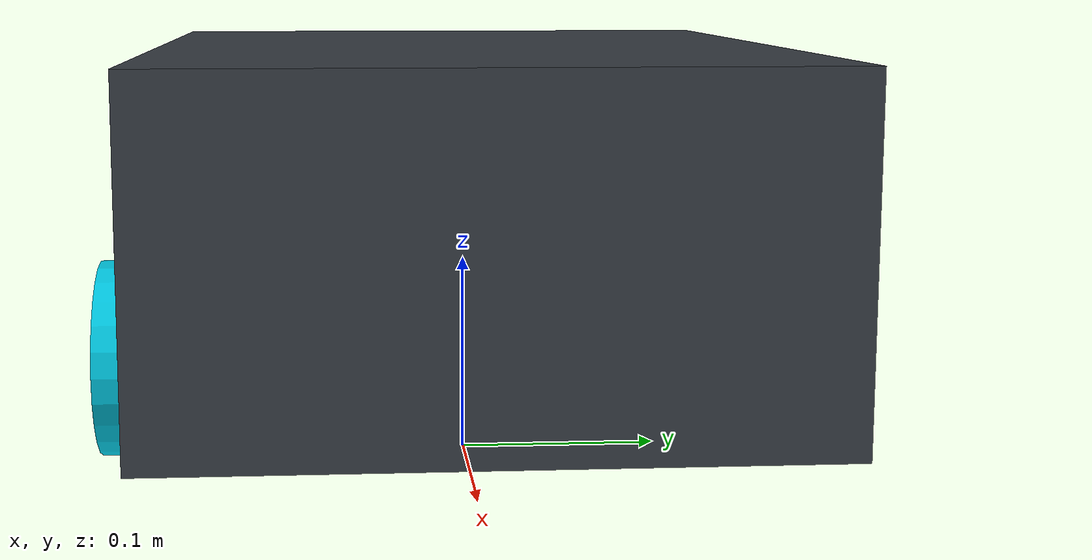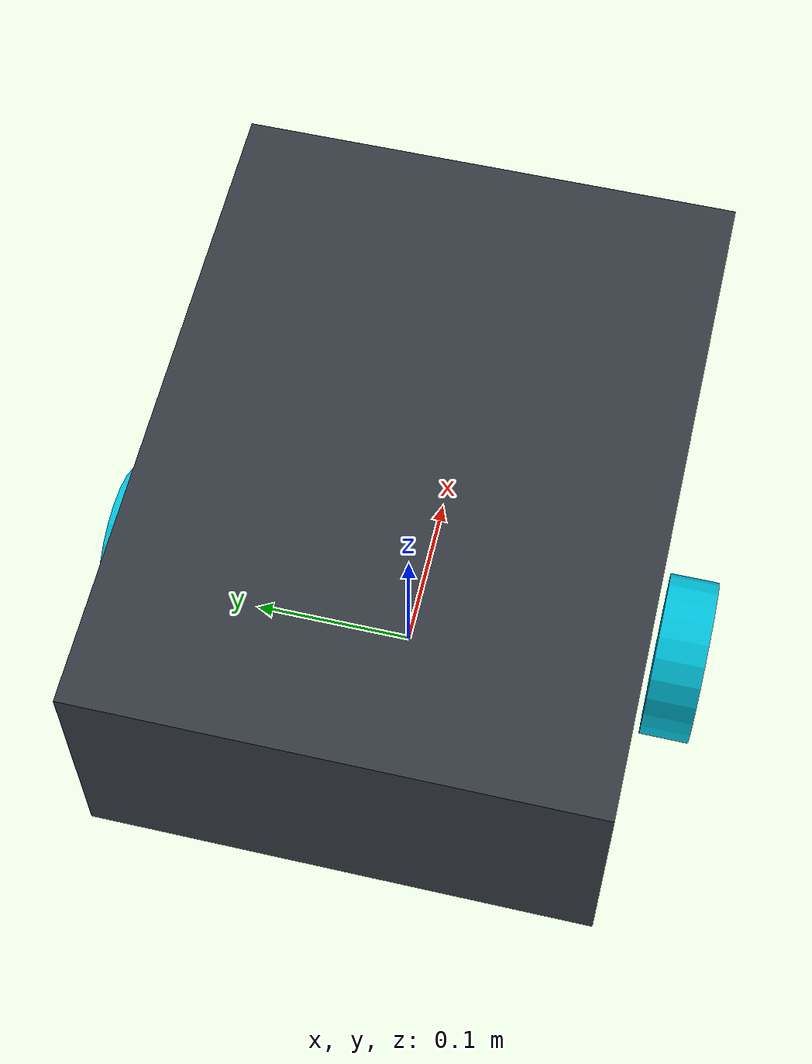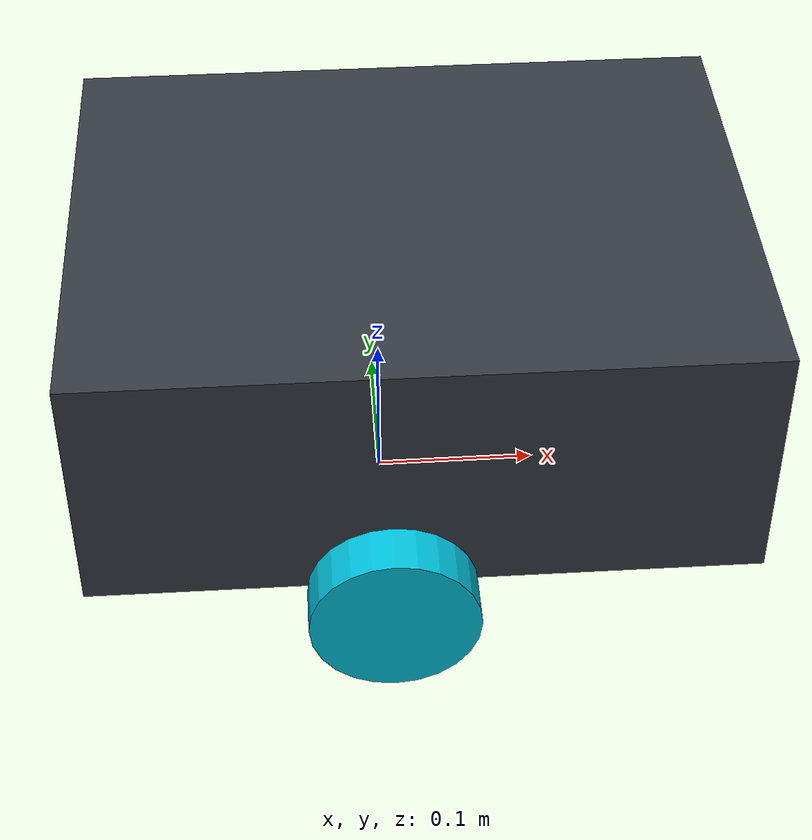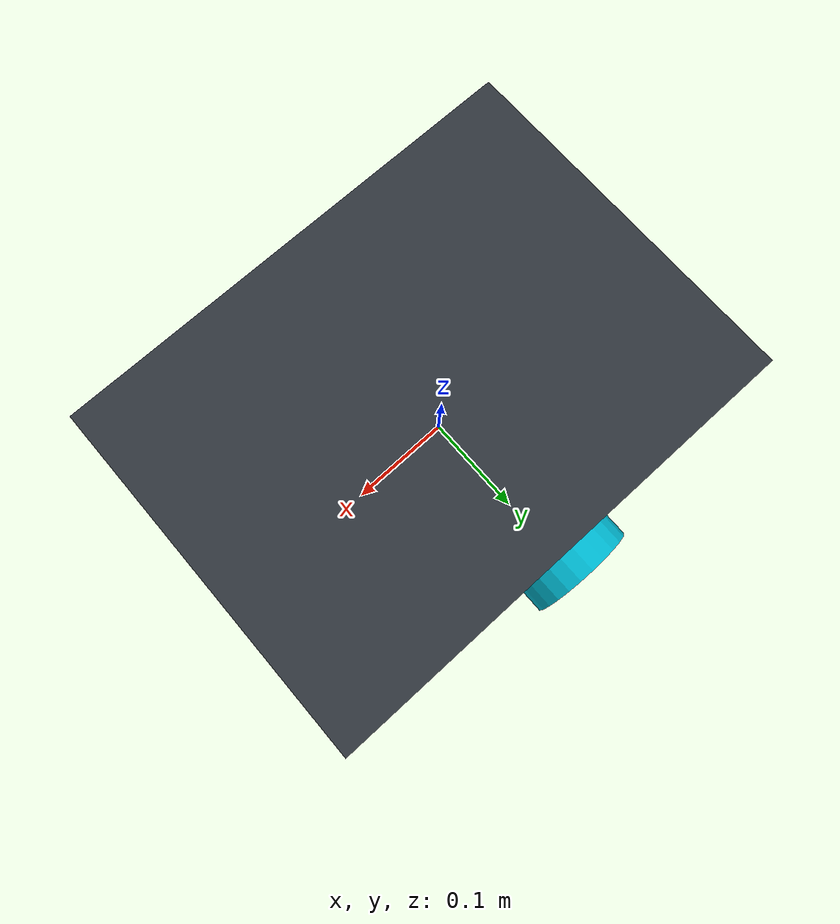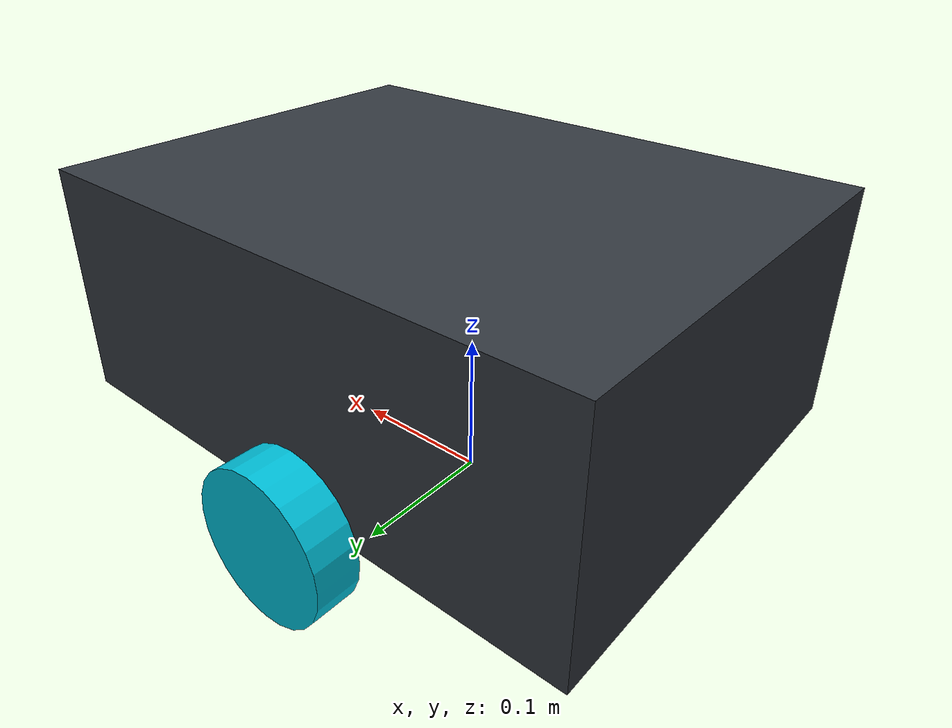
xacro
<?xml version="1.0"?>
<robot xmlns:xacro="http://www.ros.org/wiki/xacro">

  <xacro:include filename="inertial_macros.xacro"/>

  <!-- Robot physical dimensions (meters, kg) -->
  <xacro:property name="chassis_length" value="0.40"/>
  <xacro:property name="chassis_width"  value="0.30"/>
  <xacro:property name="chassis_height" value="0.16"/>
  <xacro:property name="chassis_mass"   value="5.0"/>

  <xacro:property name="wheel_radius"   value="0.05"/>
  <xacro:property name="wheel_width"    value="0.03"/>
  <xacro:property name="wheel_mass"     value="0.5"/>
  <xacro:property name="wheel_separation" value="0.34"/>

  <xacro:property name="caster_radius"  value="0.025"/>
  <xacro:property name="caster_mass"    value="0.25"/>
  <xacro:property name="caster_x_offset" value="-0.13"/>

  <!-- BASE_FOOTPRINT LINK (Contact point with ground directly below base_link) -->
  <link name="base_footprint"/>

  <!-- BASE_LINK (Midpoint between the two drive wheels at axle height) -->
  <joint name="base_footprint_joint" type="fixed">
    <parent link="base_footprint"/>
    <child link="base_link"/>
    <origin xyz="0 0 ${wheel_radius}" rpy="0 0 0"/>
  </joint>

  <link name="base_link">
    <!-- Base link is a reference frame with zero mass; chassis attaches to it -->
  </link>

  <!-- CHASSIS LINK -->
  <joint name="chassis_joint" type="fixed">
    <parent link="base_link"/>
    <child link="chassis"/>
    <origin xyz="0 0 0" rpy="0 0 0"/>
  </joint>

  <link name="chassis">
    <visual>
      <origin xyz="0.02 0 ${chassis_height/2}" rpy="0 0 0"/>
      <geometry>
        <box size="${chassis_length} ${chassis_width} ${chassis_height}"/>
      </geometry>
      <material name="sentinel_dark_grey">
        <color rgba="0.2 0.22 0.25 1.0"/>
      </material>
    </visual>
    <collision>
      <origin xyz="0.02 0 ${chassis_height/2}" rpy="0 0 0"/>
      <geometry>
        <box size="${chassis_length} ${chassis_width} ${chassis_height}"/>
      </geometry>
    </collision>
    <xacro:inertial_box mass="${chassis_mass}" x="${chassis_length}" y="${chassis_width}" z="${chassis_height}">
      <origin xyz="0.02 0 ${chassis_height/2}" rpy="0 0 0"/>
    </xacro:inertial_box>
  </link>

  <!-- LEFT DRIVE WHEEL -->
  <joint name="left_wheel_joint" type="continuous">
    <parent link="base_link"/>
    <child link="left_wheel"/>
    <origin xyz="0 ${wheel_separation/2} 0" rpy="-${pi/2} 0 0"/>
    <axis xyz="0 0 1"/>
  </joint>

  <link name="left_wheel">
    <visual>
      <geometry>
        <cylinder radius="${wheel_radius}" length="${wheel_width}"/>
      </geometry>
      <material name="sentinel_cyan">
        <color rgba="0.0 0.75 0.85 1.0"/>
      </material>
    </visual>
    <collision>
      <geometry>
        <sphere radius="${wheel_radius}"/>
      </geometry>
    </collision>
    <xacro:inertial_cylinder mass="${wheel_mass}" length="${wheel_width}" radius="${wheel_radius}">
      <origin xyz="0 0 0" rpy="0 0 0"/>
    </xacro:inertial_cylinder>
  </link>

  <!-- RIGHT DRIVE WHEEL -->
  <joint name="right_wheel_joint" type="continuous">
    <parent link="base_link"/>
    <child link="right_wheel"/>
    <origin xyz="0 -${wheel_separation/2} 0" rpy="${pi/2} 0 0"/>
    <axis xyz="0 0 -1"/>
  </joint>

  <link name="right_wheel">
    <visual>
      <geometry>
        <cylinder radius="${wheel_radius}" length="${wheel_width}"/>
      </geometry>
      <material name="sentinel_cyan">
        <color rgba="0.0 0.75 0.85 1.0"/>
      </material>
    </visual>
    <collision>
      <geometry>
        <sphere radius="${wheel_radius}"/>
      </geometry>
    </collision>
    <xacro:inertial_cylinder mass="${wheel_mass}" length="${wheel_width}" radius="${wheel_radius}">
      <origin xyz="0 0 0" rpy="0 0 0"/>
    </xacro:inertial_cylinder>
  </link>

  <!-- REAR CASTER WHEEL (Frictionless support) -->
  <joint name="caster_wheel_joint" type="fixed">
    <parent link="base_link"/>
    <child link="caster_wheel"/>
    <origin xyz="${caster_x_offset} 0 ${-wheel_radius + caster_radius}" rpy="0 0 0"/>
  </joint>

  <link name="caster_wheel">
    <visual>
      <geometry>
        <sphere radius="${caster_radius}"/>
      </geometry>
      <material name="sentinel_white">
        <color rgba="0.9 0.9 0.9 1.0"/>
      </material>
    </visual>
    <collision>
      <geometry>
        <sphere radius="${caster_radius}"/>
      </geometry>
    </collision>
    <xacro:inertial_sphere mass="${caster_mass}" radius="${caster_radius}">
      <origin xyz="0 0 0" rpy="0 0 0"/>
    </xacro:inertial_sphere>
  </link>

</robot>

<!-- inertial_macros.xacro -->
<robot xmlns:xacro="http://www.ros.org/wiki/xacro">

  <!-- Inertia macro for a solid cuboid (box) -->
  <xacro:macro name="inertial_box" params="mass x y z *origin">
    <inertial>
      <xacro:insert_block name="origin"/>
      <mass value="${mass}"/>
      <inertia ixx="${(1/12) * mass * (y*y + z*z)}" ixy="0.0" ixz="0.0"
               iyy="${(1/12) * mass * (x*x + z*z)}" iyz="0.0"
               izz="${(1/12) * mass * (x*x + y*y)}"/>
    </inertial>
  </xacro:macro>

  <!-- Inertia macro for a cylinder (aligned along Z axis) -->
  <xacro:macro name="inertial_cylinder" params="mass length radius *origin">
    <inertial>
      <xacro:insert_block name="origin"/>
      <mass value="${mass}"/>
      <inertia ixx="${(1/12) * mass * (3*radius*radius + length*length)}" ixy="0.0" ixz="0.0"
               iyy="${(1/12) * mass * (3*radius*radius + length*length)}" iyz="0.0"
               izz="${(1/2) * mass * (radius*radius)}"/>
    </inertial>
  </xacro:macro>

  <!-- Inertia macro for a solid sphere -->
  <xacro:macro name="inertial_sphere" params="mass radius *origin">
    <inertial>
      <xacro:insert_block name="origin"/>
      <mass value="${mass}"/>
      <inertia ixx="${(2/5) * mass * (radius*radius)}" ixy="0.0" ixz="0.0"
               iyy="${(2/5) * mass * (radius*radius)}" iyz="0.0"
               izz="${(2/5) * mass * (radius*radius)}"/>
    </inertial>
  </xacro:macro>

</robot>
